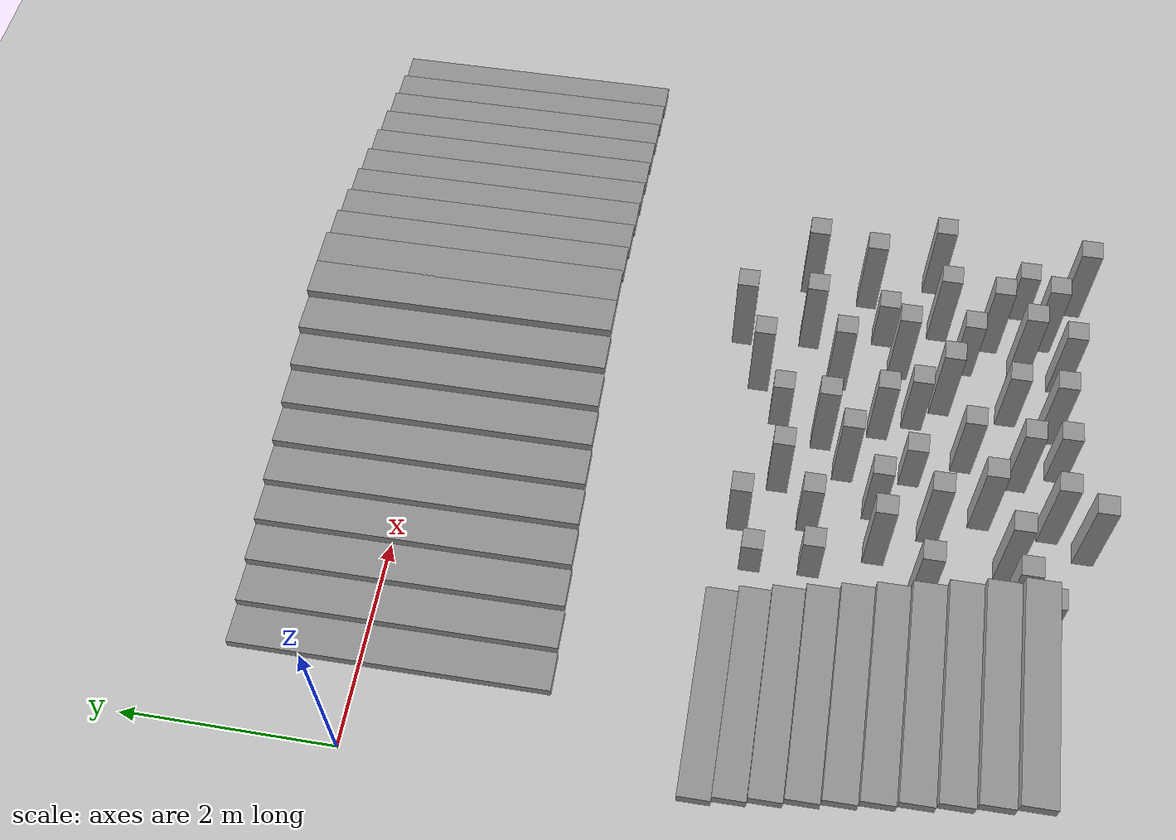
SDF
<sdf version="1.7">
 <world name="default">
  <model name="ground_plane">
   <static>1</static>
   <link name="link">
    <collision name="collision">
     <geometry><plane><normal>0 0 1</normal><size>100 100</size></plane></geometry>
     <surface><friction><ode><mu>200</mu><mu2>200</mu2></ode></friction></surface>
    </collision>
    <visual name="visual">
     <cast_shadows>0</cast_shadows>
     <geometry><plane><normal>0 0 1</normal><size>100 100</size></plane></geometry>
     <material>
      <script><uri>file://media/materials/scripts/gazebo.material</uri><name>Gazebo/Grey</name></script>
     </material>
    </visual>
   </link>
  </model>
  <model name="stair_1">
   <pose>1.76459 -0.264334 0 0 -0 0</pose>
   <link name="Stairs_2">
    <visual name="Stairs_2_Visual_0">
     <pose>-0.81 0 0.05 0 -0 1.5708</pose>
     <geometry><box><size>3 0.37 0.1</size></box></geometry>
     <material>
      <script><uri>file://media/materials/scripts/gazebo.material</uri><name>Gazebo/Grey</name></script>
      <ambient>1 1 1 1</ambient>
     </material>
     <meta><layer>0</layer></meta>
    </visual>
    <collision name="Stairs_2_Collision_0">
     <geometry><box><size>3 0.37 0.1</size></box></geometry>
     <pose>-0.81 0 0.05 0 -0 1.5708</pose>
     <surface><friction><ode><mu>200</mu><mu2>200</mu2></ode></friction></surface>
    </collision>
    <visual name="Stairs_2_Visual_1">
     <pose>-0.44 0 0.15 0 -0 1.5708</pose>
     <geometry><box><size>3 0.37 0.1</size></box></geometry>
     <material>
      <script><uri>file://media/materials/scripts/gazebo.material</uri><name>Gazebo/Grey</name></script>
      <ambient>1 1 1 1</ambient>
     </material>
     <meta><layer>0</layer></meta>
    </visual>
    <collision name="Stairs_2_Collision_1">
     <geometry><box><size>3 0.37 0.1</size></box></geometry>
     <pose>-0.44 0 0.15 0 -0 1.5708</pose>
     <surface><friction><ode><mu>200</mu><mu2>200</mu2></ode></friction></surface>
    </collision>
    <visual name="Stairs_2_Visual_2">
     <pose>-0.07 0 0.25 0 -0 1.5708</pose>
     <geometry><box><size>3 0.37 0.1</size></box></geometry>
     <material>
      <script><uri>file://media/materials/scripts/gazebo.material</uri><name>Gazebo/Grey</name></script>
      <ambient>1 1 1 1</ambient>
     </material>
     <meta><layer>0</layer></meta>
    </visual>
    <collision name="Stairs_2_Collision_2">
     <geometry><box><size>3 0.37 0.1</size></box></geometry>
     <pose>-0.07 0 0.25 0 -0 1.5708</pose>
     <surface><friction><ode><mu>200</mu><mu2>200</mu2></ode></friction></surface>
    </collision>
    <visual name="Stairs_2_Visual_3">
     <pose>0.3 0 0.35 0 -0 1.5708</pose>
     <geometry><box><size>3 0.37 0.1</size></box></geometry>
     <material>
      <script><uri>file://media/materials/scripts/gazebo.material</uri><name>Gazebo/Grey</name></script>
      <ambient>1 1 1 1</ambient>
     </material>
     <meta><layer>0</layer></meta>
    </visual>
    <collision name="Stairs_2_Collision_3">
     <geometry><box><size>3 0.37 0.1</size></box></geometry>
     <pose>0.3 0 0.35 0 -0 1.5708</pose>
     <surface><friction><ode><mu>200</mu><mu2>200</mu2></ode></friction></surface>
    </collision>
    <visual name="Stairs_2_Visual_4">
     <pose>0.67 0 0.45 0 -0 1.5708</pose>
     <geometry><box><size>3 0.37 0.1</size></box></geometry>
     <material>
      <script><uri>file://media/materials/scripts/gazebo.material</uri><name>Gazebo/Grey</name></script>
      <ambient>1 1 1 1</ambient>
     </material>
     <meta><layer>0</layer></meta>
    </visual>
    <collision name="Stairs_2_Collision_4">
     <geometry><box><size>3 0.37 0.1</size></box></geometry>
     <pose>0.67 0 0.45 0 -0 1.5708</pose>
     <surface><friction><ode><mu>200</mu><mu2>200</mu2></ode></friction></surface>
    </collision>
    <visual name="Stairs_2_Visual_5">
     <pose>1.04 0 0.55 0 -0 1.5708</pose>
     <geometry><box><size>3 0.37 0.1</size></box></geometry>
     <material>
      <script><uri>file://media/materials/scripts/gazebo.material</uri><name>Gazebo/Grey</name></script>
      <ambient>1 1 1 1</ambient>
     </material>
     <meta><layer>0</layer></meta>
    </visual>
    <collision name="Stairs_2_Collision_5">
     <geometry><box><size>3 0.37 0.1</size></box></geometry>
     <pose>1.04 0 0.55 0 -0 1.5708</pose>
     <surface><friction><ode><mu>200</mu><mu2>200</mu2></ode></friction></surface>
    </collision>
    <visual name="Stairs_2_Visual_6">
     <pose>1.41 0 0.65 0 -0 1.5708</pose>
     <geometry><box><size>3 0.37 0.1</size></box></geometry>
     <material>
      <script><uri>file://media/materials/scripts/gazebo.material</uri><name>Gazebo/Grey</name></script>
      <ambient>1 1 1 1</ambient>
     </material>
     <meta><layer>0</layer></meta>
    </visual>
    <collision name="Stairs_2_Collision_6">
     <geometry><box><size>3 0.37 0.1</size></box></geometry>
     <pose>1.41 0 0.65 0 -0 1.5708</pose>
     <surface><friction><ode><mu>200</mu><mu2>200</mu2></ode></friction></surface>
    </collision>
    <visual name="Stairs_2_Visual_7">
     <pose>1.78 0 0.75 0 -0 1.5708</pose>
     <geometry><box><size>3 0.37 0.1</size></box></geometry>
     <material>
      <script><uri>file://media/materials/scripts/gazebo.material</uri><name>Gazebo/Grey</name></script>
      <ambient>1 1 1 1</ambient>
     </material>
     <meta><layer>0</layer></meta>
    </visual>
    <collision name="Stairs_2_Collision_7">
     <geometry><box><size>3 0.37 0.1</size></box></geometry>
     <pose>1.78 0 0.75 0 -0 1.5708</pose>
     <surface><friction><ode><mu>200</mu><mu2>200</mu2></ode></friction></surface>
    </collision>
    <visual name="Stairs_2_Visual_8">
     <pose>2.15 0 0.85 0 -0 1.5708</pose>
     <geometry><box><size>3 0.37 0.1</size></box></geometry>
     <material>
      <script><uri>file://media/materials/scripts/gazebo.material</uri><name>Gazebo/Grey</name></script>
      <ambient>1 1 1 1</ambient>
     </material>
     <meta><layer>0</layer></meta>
    </visual>
    <collision name="Stairs_2_Collision_8">
     <geometry><box><size>3 0.37 0.1</size></box></geometry>
     <pose>2.15 0 0.85 0 -0 1.5708</pose>
     <surface><friction><ode><mu>200</mu><mu2>200</mu2></ode></friction></surface>
    </collision>
    <visual name="Stairs_2_Visual_9">
     <pose>2.52 0 0.95 0 -0 1.5708</pose>
     <geometry><box><size>3 0.37 0.1</size></box></geometry>
     <material>
      <script><uri>file://media/materials/scripts/gazebo.material</uri><name>Gazebo/Grey</name></script>
      <ambient>1 1 1 1</ambient>
     </material>
     <meta><layer>0</layer></meta>
    </visual>
    <collision name="Stairs_2_Collision_9">
     <geometry><box><size>3 0.37 0.1</size></box></geometry>
     <pose>2.52 0 0.95 0 -0 1.5708</pose>
     <surface><friction><ode><mu>200</mu><mu2>200</mu2></ode></friction></surface>
    </collision>
   </link>
   <static>1</static>
  </model>
  <model name="stair-0.12x0.3">
   <pose>1 -4.5 0 0 -0 0</pose>
   <link name="Stairs_2">
    <visual name="Stairs_2_Visual_0">
     <pose>0 1.35 0.06 0 -0 0</pose>
     <geometry><box><size>2 0.3 0.12</size></box></geometry>
     <material>
      <script><uri>file://media/materials/scripts/gazebo.material</uri><name>Gazebo/Grey</name></script>
      <ambient>1 1 1 1</ambient>
     </material>
     <meta><layer>0</layer></meta>
    </visual>
    <collision name="Stairs_2_Collision_0">
     <geometry><box><size>2 0.3 0.12</size></box></geometry>
     <pose>0 1.35 0.06 0 -0 0</pose>
     <surface><friction><ode><mu>200</mu><mu2>200</mu2></ode></friction></surface>
    </collision>
    <visual name="Stairs_2_Visual_1">
     <pose>0 1.05 0.18 0 -0 0</pose>
     <geometry><box><size>2 0.3 0.12</size></box></geometry>
     <material>
      <script><uri>file://media/materials/scripts/gazebo.material</uri><name>Gazebo/Grey</name></script>
      <ambient>1 1 1 1</ambient>
     </material>
     <meta><layer>0</layer></meta>
    </visual>
    <collision name="Stairs_2_Collision_1">
     <geometry><box><size>2 0.3 0.12</size></box></geometry>
     <pose>0 1.05 0.18 0 -0 0</pose>
    </collision>
    <visual name="Stairs_2_Visual_2">
     <pose>0 0.75 0.3 0 -0 0</pose>
     <geometry><box><size>2 0.3 0.12</size></box></geometry>
     <material>
      <script><uri>file://media/materials/scripts/gazebo.material</uri><name>Gazebo/Grey</name></script>
      <ambient>1 1 1 1</ambient>
     </material>
     <meta><layer>0</layer></meta>
    </visual>
    <collision name="Stairs_2_Collision_2">
     <geometry><box><size>2 0.3 0.12</size></box></geometry>
     <pose>0 0.75 0.3 0 -0 0</pose>
    </collision>
    <visual name="Stairs_2_Visual_3">
     <pose>0 0.45 0.42 0 -0 0</pose>
     <geometry><box><size>2 0.3 0.12</size></box></geometry>
     <material>
      <script><uri>file://media/materials/scripts/gazebo.material</uri><name>Gazebo/Grey</name></script>
      <ambient>1 1 1 1</ambient>
     </material>
     <meta><layer>0</layer></meta>
    </visual>
    <collision name="Stairs_2_Collision_3">
     <geometry><box><size>2 0.3 0.12</size></box></geometry>
     <pose>0 0.45 0.42 0 -0 0</pose>
    </collision>
    <visual name="Stairs_2_Visual_4">
     <pose>0 0.15 0.54 0 -0 0</pose>
     <geometry><box><size>2 0.3 0.12</size></box></geometry>
     <material>
      <script><uri>file://media/materials/scripts/gazebo.material</uri><name>Gazebo/Grey</name></script>
      <ambient>1 1 1 1</ambient>
     </material>
     <meta><layer>0</layer></meta>
    </visual>
    <collision name="Stairs_2_Collision_4">
     <geometry><box><size>2 0.3 0.12</size></box></geometry>
     <pose>0 0.15 0.54 0 -0 0</pose>
    </collision>
    <visual name="Stairs_2_Visual_5">
     <pose>0 -0.15 0.66 0 -0 0</pose>
     <geometry><box><size>2 0.3 0.12</size></box></geometry>
     <material>
      <script><uri>file://media/materials/scripts/gazebo.material</uri><name>Gazebo/Grey</name></script>
      <ambient>1 1 1 1</ambient>
     </material>
     <meta><layer>0</layer></meta>
    </visual>
    <collision name="Stairs_2_Collision_5">
     <geometry><box><size>2 0.3 0.12</size></box></geometry>
     <pose>0 -0.15 0.66 0 -0 0</pose>
    </collision>
    <visual name="Stairs_2_Visual_6">
     <pose>0 -0.45 0.78 0 -0 0</pose>
     <geometry><box><size>2 0.3 0.12</size></box></geometry>
     <material>
      <script><uri>file://media/materials/scripts/gazebo.material</uri><name>Gazebo/Grey</name></script>
      <ambient>1 1 1 1</ambient>
     </material>
     <meta><layer>0</layer></meta>
    </visual>
    <collision name="Stairs_2_Collision_6">
     <geometry><box><size>2 0.3 0.12</size></box></geometry>
     <pose>0 -0.45 0.78 0 -0 0</pose>
    </collision>
    <visual name="Stairs_2_Visual_7">
     <pose>0 -0.75 0.9 0 -0 0</pose>
     <geometry><box><size>2 0.3 0.12</size></box></geometry>
     <material>
      <script><uri>file://media/materials/scripts/gazebo.material</uri><name>Gazebo/Grey</name></script>
      <ambient>1 1 1 1</ambient>
     </material>
     <meta><layer>0</layer></meta>
    </visual>
    <collision name="Stairs_2_Collision_7">
     <geometry><box><size>2 0.3 0.12</size></box></geometry>
     <pose>0 -0.75 0.9 0 -0 0</pose>
    </collision>
    <visual name="Stairs_2_Visual_8">
     <pose>0 -1.05 1.02 0 -0 0</pose>
     <geometry><box><size>2 0.3 0.12</size></box></geometry>
     <material>
      <script><uri>file://media/materials/scripts/gazebo.material</uri><name>Gazebo/Grey</name></script>
      <ambient>1 1 1 1</ambient>
     </material>
     <meta><layer>0</layer></meta>
    </visual>
    <collision name="Stairs_2_Collision_8">
     <geometry><box><size>2 0.3 0.12</size></box></geometry>
     <pose>0 -1.05 1.02 0 -0 0</pose>
    </collision>
    <visual name="Stairs_2_Visual_9">
     <pose>0 -1.35 1.14 0 -0 0</pose>
     <geometry><box><size>2 0.3 0.12</size></box></geometry>
     <material>
      <script><uri>file://media/materials/scripts/gazebo.material</uri><name>Gazebo/Grey</name></script>
      <ambient>1 1 1 1</ambient>
     </material>
     <meta><layer>0</layer></meta>
    </visual>
    <collision name="Stairs_2_Collision_9">
     <geometry><box><size>2 0.3 0.12</size></box></geometry>
     <pose>0 -1.35 1.14 0 -0 0</pose>
    </collision>
   </link>
   <static>1</static>
  </model>
  <model name="column_0.2_0.2_1">
   <pose>2.43998 -3.36854 -0.544818 0 -0 0</pose>
   <link name="Stairs_4">
    <visual name="Stairs_4_Visual_0">
     <pose>-0.053734 0 0.5 0 -0 0</pose>
     <geometry><box><size>0.2 0.2 1</size></box></geometry>
     <material>
      <script><uri>file://media/materials/scripts/gazebo.material</uri><name>Gazebo/Grey</name></script>
      <ambient>1 1 1 1</ambient>
     </material>
     <meta><layer>0</layer></meta>
    </visual>
    <collision name="Stairs_4_Collision_0">
     <geometry><box><size>0.2 0.2 1</size></box></geometry>
     <pose>-0.053734 0 0.5 0 -0 0</pose>
    </collision>
   </link>
   <static>1</static>
  </model>
  <model name="column_0.2_0.2_1_clone">
   <pose>2.47019 -3.92126 -0.388919 0 -0 0</pose>
   <link name="Stairs_4">
    <visual name="Stairs_4_Visual_0">
     <pose>-0.053734 0 0.5 0 -0 0</pose>
     <geometry><box><size>0.2 0.2 1</size></box></geometry>
     <material>
      <script><uri>file://media/materials/scripts/gazebo.material</uri><name>Gazebo/Grey</name></script>
      <ambient>1 1 1 1</ambient>
     </material>
     <meta><layer>0</layer></meta>
    </visual>
    <collision name="Stairs_4_Collision_0">
     <geometry><box><size>0.2 0.2 1</size></box></geometry>
     <pose>-0.053734 0 0.5 0 -0 0</pose>
    </collision>
   </link>
   <static>1</static>
  </model>
  <model name="column_0.2_0.2_1_clone_0">
   <pose>2.94265 -3.86072 -0.240367 0 -0 0</pose>
   <link name="Stairs_4">
    <visual name="Stairs_4_Visual_0">
     <pose>-0.053734 0 0.5 0 -0 0</pose>
     <geometry><box><size>0.2 0.2 1</size></box></geometry>
     <material>
      <script><uri>file://media/materials/scripts/gazebo.material</uri><name>Gazebo/Grey</name></script>
      <ambient>1 1 1 1</ambient>
     </material>
     <meta><layer>0</layer></meta>
    </visual>
    <collision name="Stairs_4_Collision_0">
     <geometry><box><size>0.2 0.2 1</size></box></geometry>
     <pose>-0.053734 0 0.5 0 -0 0</pose>
    </collision>
   </link>
   <static>1</static>
  </model>
  <model name="column_0.2_0.2_1_clone_1">
   <pose>3.33077 -3.53594 -0.12401 0 -0 0</pose>
   <link name="Stairs_4">
    <visual name="Stairs_4_Visual_0">
     <pose>-0.053734 0 0.5 0 -0 0</pose>
     <geometry><box><size>0.2 0.2 1</size></box></geometry>
     <material>
      <script><uri>file://media/materials/scripts/gazebo.material</uri><name>Gazebo/Grey</name></script>
      <ambient>1 1 1 1</ambient>
     </material>
     <meta><layer>0</layer></meta>
    </visual>
    <collision name="Stairs_4_Collision_0">
     <geometry><box><size>0.2 0.2 1</size></box></geometry>
     <pose>-0.053734 0 0.5 0 -0 0</pose>
    </collision>
   </link>
   <static>1</static>
  </model>
  <model name="column_0.2_0.2_1_clone_2">
   <pose>4.08626 -3.47523 -0.328391 0 -0 0</pose>
   <link name="Stairs_4">
    <visual name="Stairs_4_Visual_0">
     <pose>-0.053734 0 0.5 0 -0 0</pose>
     <geometry><box><size>0.2 0.2 1</size></box></geometry>
     <material>
      <script><uri>file://media/materials/scripts/gazebo.material</uri><name>Gazebo/Grey</name></script>
      <ambient>1 1 1 1</ambient>
     </material>
     <meta><layer>0</layer></meta>
    </visual>
    <collision name="Stairs_4_Collision_0">
     <geometry><box><size>0.2 0.2 1</size></box></geometry>
     <pose>-0.053734 0 0.5 0 -0 0</pose>
    </collision>
   </link>
   <static>1</static>
  </model>
  <model name="column_0.2_0.2_1_clone_3">
   <pose>3.54211 -4.14939 0 0 -0 0</pose>
   <link name="Stairs_4">
    <visual name="Stairs_4_Visual_0">
     <pose>-0.053734 0 0.5 0 -0 0</pose>
     <geometry><box><size>0.2 0.2 1</size></box></geometry>
     <material>
      <script><uri>file://media/materials/scripts/gazebo.material</uri><name>Gazebo/Grey</name></script>
      <ambient>1 1 1 1</ambient>
     </material>
     <meta><layer>0</layer></meta>
    </visual>
    <collision name="Stairs_4_Collision_0">
     <geometry><box><size>0.2 0.2 1</size></box></geometry>
     <pose>-0.053734 0 0.5 0 -0 0</pose>
    </collision>
   </link>
   <static>1</static>
  </model>
  <model name="column_0.2_0.2_1_clone_4">
   <pose>2.69067 -4.50877 0 0 -0 0</pose>
   <link name="Stairs_4">
    <visual name="Stairs_4_Visual_0">
     <pose>-0.053734 0 0.5 0 -0 0</pose>
     <geometry><box><size>0.2 0.2 1</size></box></geometry>
     <material>
      <script><uri>file://media/materials/scripts/gazebo.material</uri><name>Gazebo/Grey</name></script>
      <ambient>1 1 1 1</ambient>
     </material>
     <meta><layer>0</layer></meta>
    </visual>
    <collision name="Stairs_4_Collision_0">
     <geometry><box><size>0.2 0.2 1</size></box></geometry>
     <pose>-0.053734 0 0.5 0 -0 0</pose>
    </collision>
   </link>
   <static>1</static>
  </model>
  <model name="column_0.2_0.2_1_clone_5">
   <pose>3.16441 -4.46969 -0.12695 0 -0 0</pose>
   <link name="Stairs_4">
    <visual name="Stairs_4_Visual_0">
     <pose>-0.053734 0 0.5 0 -0 0</pose>
     <geometry><box><size>0.2 0.2 1</size></box></geometry>
     <material>
      <script><uri>file://media/materials/scripts/gazebo.material</uri><name>Gazebo/Grey</name></script>
      <ambient>1 1 1 1</ambient>
     </material>
     <meta><layer>0</layer></meta>
    </visual>
    <collision name="Stairs_4_Collision_0">
     <geometry><box><size>0.2 0.2 1</size></box></geometry>
     <pose>-0.053734 0 0.5 0 -0 0</pose>
    </collision>
   </link>
   <static>1</static>
  </model>
  <model name="column_0.2_0.2_1_clone_6">
   <pose>2.29582 -4.9482 0 0 -0 0</pose>
   <link name="Stairs_4">
    <visual name="Stairs_4_Visual_0">
     <pose>-0.053734 0 0.5 0 -0 0</pose>
     <geometry><box><size>0.2 0.2 1</size></box></geometry>
     <material>
      <script><uri>file://media/materials/scripts/gazebo.material</uri><name>Gazebo/Grey</name></script>
      <ambient>1 1 1 1</ambient>
     </material>
     <meta><layer>0</layer></meta>
    </visual>
    <collision name="Stairs_4_Collision_0">
     <geometry><box><size>0.2 0.2 1</size></box></geometry>
     <pose>-0.053734 0 0.5 0 -0 0</pose>
    </collision>
   </link>
   <static>1</static>
  </model>
  <model name="column_0.2_0.2_1_clone_7">
   <pose>3 -5 0 0 -0 0</pose>
   <link name="Stairs_4">
    <visual name="Stairs_4_Visual_0">
     <pose>-0.053734 0 0.5 0 -0 0</pose>
     <geometry><box><size>0.2 0.2 1</size></box></geometry>
     <material>
      <script><uri>file://media/materials/scripts/gazebo.material</uri><name>Gazebo/Grey</name></script>
      <ambient>1 1 1 1</ambient>
     </material>
     <meta><layer>0</layer></meta>
    </visual>
    <collision name="Stairs_4_Collision_0">
     <geometry><box><size>0.2 0.2 1</size></box></geometry>
     <pose>-0.053734 0 0.5 0 -0 0</pose>
    </collision>
   </link>
   <static>1</static>
  </model>
  <model name="column_0.2_0.2_1_clone_8">
   <pose>3.59843 -4.79127 -0.351116 0 -0 0</pose>
   <link name="Stairs_4">
    <visual name="Stairs_4_Visual_0">
     <pose>-0.053734 0 0.5 0 -0 0</pose>
     <geometry><box><size>0.2 0.2 1</size></box></geometry>
     <material>
      <script><uri>file://media/materials/scripts/gazebo.material</uri><name>Gazebo/Grey</name></script>
      <ambient>1 1 1 1</ambient>
     </material>
     <meta><layer>0</layer></meta>
    </visual>
    <collision name="Stairs_4_Collision_0">
     <geometry><box><size>0.2 0.2 1</size></box></geometry>
     <pose>-0.053734 0 0.5 0 -0 0</pose>
    </collision>
   </link>
   <static>1</static>
  </model>
  <model name="column_0.2_0.2_1_clone_9">
   <pose>4.08606 -4.45122 -0.09133 0 -0 0</pose>
   <link name="Stairs_4">
    <visual name="Stairs_4_Visual_0">
     <pose>-0.053734 0 0.5 0 -0 0</pose>
     <geometry><box><size>0.2 0.2 1</size></box></geometry>
     <material>
      <script><uri>file://media/materials/scripts/gazebo.material</uri><name>Gazebo/Grey</name></script>
      <ambient>1 1 1 1</ambient>
     </material>
     <meta><layer>0</layer></meta>
    </visual>
    <collision name="Stairs_4_Collision_0">
     <geometry><box><size>0.2 0.2 1</size></box></geometry>
     <pose>-0.053734 0 0.5 0 -0 0</pose>
    </collision>
   </link>
   <static>1</static>
  </model>
  <model name="column_0.2_0.2_1_clone_10">
   <pose>4.59372 -4 0 0 -0 0</pose>
   <link name="Stairs_4">
    <visual name="Stairs_4_Visual_0">
     <pose>-0.053734 0 0.5 0 -0 0</pose>
     <geometry><box><size>0.2 0.2 1</size></box></geometry>
     <material>
      <script><uri>file://media/materials/scripts/gazebo.material</uri><name>Gazebo/Grey</name></script>
      <ambient>1 1 1 1</ambient>
     </material>
     <meta><layer>0</layer></meta>
    </visual>
    <collision name="Stairs_4_Collision_0">
     <geometry><box><size>0.2 0.2 1</size></box></geometry>
     <pose>-0.053734 0 0.5 0 -0 0</pose>
    </collision>
   </link>
   <static>1</static>
  </model>
  <model name="column_0.2_0.2_1_clone_11">
   <pose>5 -3 0 0 -0 0</pose>
   <link name="Stairs_4">
    <visual name="Stairs_4_Visual_0">
     <pose>-0.053734 0 0.5 0 -0 0</pose>
     <geometry><box><size>0.2 0.2 1</size></box></geometry>
     <material>
      <script><uri>file://media/materials/scripts/gazebo.material</uri><name>Gazebo/Grey</name></script>
      <ambient>1 1 1 1</ambient>
     </material>
     <meta><layer>0</layer></meta>
    </visual>
    <collision name="Stairs_4_Collision_0">
     <geometry><box><size>0.2 0.2 1</size></box></geometry>
     <pose>-0.053734 0 0.5 0 -0 0</pose>
    </collision>
   </link>
   <static>1</static>
  </model>
  <model name="column_0.2_0.2_1_clone_12">
   <pose>5.05859 -3.68262 0 0 -0 0</pose>
   <link name="Stairs_4">
    <visual name="Stairs_4_Visual_0">
     <pose>-0.053734 0 0.5 0 -0 0</pose>
     <geometry><box><size>0.2 0.2 1</size></box></geometry>
     <material>
      <script><uri>file://media/materials/scripts/gazebo.material</uri><name>Gazebo/Grey</name></script>
      <ambient>1 1 1 1</ambient>
     </material>
     <meta><layer>0</layer></meta>
    </visual>
    <collision name="Stairs_4_Collision_0">
     <geometry><box><size>0.2 0.2 1</size></box></geometry>
     <pose>-0.053734 0 0.5 0 -0 0</pose>
    </collision>
   </link>
   <static>1</static>
  </model>
  <model name="column_0.2_0.2_1_clone_13">
   <pose>4.4566 -5.04009 0 0 -0 0</pose>
   <link name="Stairs_4">
    <visual name="Stairs_4_Visual_0">
     <pose>-0.053734 0 0.5 0 -0 0</pose>
     <geometry><box><size>0.2 0.2 1</size></box></geometry>
     <material>
      <script><uri>file://media/materials/scripts/gazebo.material</uri><name>Gazebo/Grey</name></script>
      <ambient>1 1 1 1</ambient>
     </material>
     <meta><layer>0</layer></meta>
    </visual>
    <collision name="Stairs_4_Collision_0">
     <geometry><box><size>0.2 0.2 1</size></box></geometry>
     <pose>-0.053734 0 0.5 0 -0 0</pose>
    </collision>
   </link>
   <static>1</static>
  </model>
  <model name="column_0.2_0.2_1_clone_14">
   <pose>4.82505 -4.5982 -0.003503 0 -0 0</pose>
   <link name="Stairs_4">
    <visual name="Stairs_4_Visual_0">
     <pose>-0.053734 0 0.5 0 -0 0</pose>
     <geometry><box><size>0.2 0.2 1</size></box></geometry>
     <material>
      <script><uri>file://media/materials/scripts/gazebo.material</uri><name>Gazebo/Grey</name></script>
      <ambient>1 1 1 1</ambient>
     </material>
     <meta><layer>0</layer></meta>
    </visual>
    <collision name="Stairs_4_Collision_0">
     <geometry><box><size>0.2 0.2 1</size></box></geometry>
     <pose>-0.053734 0 0.5 0 -0 0</pose>
    </collision>
   </link>
   <static>1</static>
  </model>
  <model name="column_0.2_0.2_1_clone_15">
   <pose>5.20804 -4.41852 -0.329639 0 -0 0</pose>
   <link name="Stairs_4">
    <visual name="Stairs_4_Visual_0">
     <pose>-0.053734 0 0.5 0 -0 0</pose>
     <geometry><box><size>0.2 0.2 1</size></box></geometry>
     <material>
      <script><uri>file://media/materials/scripts/gazebo.material</uri><name>Gazebo/Grey</name></script>
      <ambient>1 1 1 1</ambient>
     </material>
     <meta><layer>0</layer></meta>
    </visual>
    <collision name="Stairs_4_Collision_0">
     <geometry><box><size>0.2 0.2 1</size></box></geometry>
     <pose>-0.053734 0 0.5 0 -0 0</pose>
    </collision>
   </link>
   <static>1</static>
  </model>
  <model name="column_0.2_0.2_1_clone_16">
   <pose>3.82963 -5.28222 -0.112357 0 -0 0</pose>
   <link name="Stairs_4">
    <visual name="Stairs_4_Visual_0">
     <pose>-0.053734 0 0.5 0 -0 0</pose>
     <geometry><box><size>0.2 0.2 1</size></box></geometry>
     <material>
      <script><uri>file://media/materials/scripts/gazebo.material</uri><name>Gazebo/Grey</name></script>
      <ambient>1 1 1 1</ambient>
     </material>
     <meta><layer>0</layer></meta>
    </visual>
    <collision name="Stairs_4_Collision_0">
     <geometry><box><size>0.2 0.2 1</size></box></geometry>
     <pose>-0.053734 0 0.5 0 -0 0</pose>
    </collision>
   </link>
   <static>1</static>
  </model>
  <model name="column_0.2_0.2_1_clone_17">
   <pose>3.16779 -5.46012 0.095015 0 -0 0</pose>
   <link name="Stairs_4">
    <visual name="Stairs_4_Visual_0">
     <pose>-0.053734 0 0.5 0 -0 0</pose>
     <geometry><box><size>0.2 0.2 1</size></box></geometry>
     <material>
      <script><uri>file://media/materials/scripts/gazebo.material</uri><name>Gazebo/Grey</name></script>
      <ambient>1 1 1 1</ambient>
     </material>
     <meta><layer>0</layer></meta>
    </visual>
    <collision name="Stairs_4_Collision_0">
     <geometry><box><size>0.2 0.2 1</size></box></geometry>
     <pose>-0.053734 0 0.5 0 -0 0</pose>
    </collision>
   </link>
   <static>1</static>
  </model>
  <model name="column_0.2_0.2_1_clone_18">
   <pose>3.69432 -5.80994 0 0 -0 0</pose>
   <link name="Stairs_4">
    <visual name="Stairs_4_Visual_0">
     <pose>-0.053734 0 0.5 0 -0 0</pose>
     <geometry><box><size>0.2 0.2 1</size></box></geometry>
     <material>
      <script><uri>file://media/materials/scripts/gazebo.material</uri><name>Gazebo/Grey</name></script>
      <ambient>1 1 1 1</ambient>
     </material>
     <meta><layer>0</layer></meta>
    </visual>
    <collision name="Stairs_4_Collision_0">
     <geometry><box><size>0.2 0.2 1</size></box></geometry>
     <pose>-0.053734 0 0.5 0 -0 0</pose>
    </collision>
   </link>
   <static>1</static>
  </model>
  <model name="column_0.2_0.2_1_clone_19">
   <pose>2.71 -5.73046 0 0 -0 0</pose>
   <link name="Stairs_4">
    <visual name="Stairs_4_Visual_0">
     <pose>-0.053734 0 0.5 0 -0 0</pose>
     <geometry><box><size>0.2 0.2 1</size></box></geometry>
     <material>
      <script><uri>file://media/materials/scripts/gazebo.material</uri><name>Gazebo/Grey</name></script>
      <ambient>1 1 1 1</ambient>
     </material>
     <meta><layer>0</layer></meta>
    </visual>
    <collision name="Stairs_4_Collision_0">
     <geometry><box><size>0.2 0.2 1</size></box></geometry>
     <pose>-0.053734 0 0.5 0 -0 0</pose>
    </collision>
   </link>
   <static>1</static>
  </model>
  <model name="column_0.2_0.2_1_clone_20">
   <pose>3.17913 -6.12706 0 0 -0 0</pose>
   <link name="Stairs_4">
    <visual name="Stairs_4_Visual_0">
     <pose>-0.053734 0 0.5 0 -0 0</pose>
     <geometry><box><size>0.2 0.2 1</size></box></geometry>
     <material>
      <script><uri>file://media/materials/scripts/gazebo.material</uri><name>Gazebo/Grey</name></script>
      <ambient>1 1 1 1</ambient>
     </material>
     <meta><layer>0</layer></meta>
    </visual>
    <collision name="Stairs_4_Collision_0">
     <geometry><box><size>0.2 0.2 1</size></box></geometry>
     <pose>-0.053734 0 0.5 0 -0 0</pose>
    </collision>
   </link>
   <static>1</static>
  </model>
  <model name="column_0.2_0.2_1_clone_21">
   <pose>2.27793 -5.80084 0 0 -0 0</pose>
   <link name="Stairs_4">
    <visual name="Stairs_4_Visual_0">
     <pose>-0.053734 0 0.5 0 -0 0</pose>
     <geometry><box><size>0.2 0.2 1</size></box></geometry>
     <material>
      <script><uri>file://media/materials/scripts/gazebo.material</uri><name>Gazebo/Grey</name></script>
      <ambient>1 1 1 1</ambient>
     </material>
     <meta><layer>0</layer></meta>
    </visual>
    <collision name="Stairs_4_Collision_0">
     <geometry><box><size>0.2 0.2 1</size></box></geometry>
     <pose>-0.053734 0 0.5 0 -0 0</pose>
    </collision>
   </link>
   <static>1</static>
  </model>
  <model name="column_0.2_0.2_1_clone_22">
   <pose>2 -6 0 0 -0 0</pose>
   <link name="Stairs_4">
    <visual name="Stairs_4_Visual_0">
     <pose>-0.053734 0 0.5 0 -0 0</pose>
     <geometry><box><size>0.2 0.2 1</size></box></geometry>
     <material>
      <script><uri>file://media/materials/scripts/gazebo.material</uri><name>Gazebo/Grey</name></script>
      <ambient>1 1 1 1</ambient>
     </material>
     <meta><layer>0</layer></meta>
    </visual>
    <collision name="Stairs_4_Collision_0">
     <geometry><box><size>0.2 0.2 1</size></box></geometry>
     <pose>-0.053734 0 0.5 0 -0 0</pose>
    </collision>
   </link>
   <static>1</static>
  </model>
  <model name="column_0.2_0.2_1_clone_23">
   <pose>3 -6.45867 0 0 -0 0</pose>
   <link name="Stairs_4">
    <visual name="Stairs_4_Visual_0">
     <pose>-0.053734 0 0.5 0 -0 0</pose>
     <geometry><box><size>0.2 0.2 1</size></box></geometry>
     <material>
      <script><uri>file://media/materials/scripts/gazebo.material</uri><name>Gazebo/Grey</name></script>
      <ambient>1 1 1 1</ambient>
     </material>
     <meta><layer>0</layer></meta>
    </visual>
    <collision name="Stairs_4_Collision_0">
     <geometry><box><size>0.2 0.2 1</size></box></geometry>
     <pose>-0.053734 0 0.5 0 -0 0</pose>
    </collision>
   </link>
   <static>1</static>
  </model>
  <model name="column_0.2_0.2_1_clone_24">
   <pose>3.86716 -6.19414 -0.215449 0 -0 0</pose>
   <link name="Stairs_4">
    <visual name="Stairs_4_Visual_0">
     <pose>-0.053734 0 0.5 0 -0 0</pose>
     <geometry><box><size>0.2 0.2 1</size></box></geometry>
     <material>
      <script><uri>file://media/materials/scripts/gazebo.material</uri><name>Gazebo/Grey</name></script>
      <ambient>1 1 1 1</ambient>
     </material>
     <meta><layer>0</layer></meta>
    </visual>
    <collision name="Stairs_4_Collision_0">
     <geometry><box><size>0.2 0.2 1</size></box></geometry>
     <pose>-0.053734 0 0.5 0 -0 0</pose>
    </collision>
   </link>
   <static>1</static>
  </model>
  <model name="column_0.2_0.2_1_clone_25">
   <pose>4.43845 -5.6985 -0.179524 0 -0 0</pose>
   <link name="Stairs_4">
    <visual name="Stairs_4_Visual_0">
     <pose>-0.053734 0 0.5 0 -0 0</pose>
     <geometry><box><size>0.2 0.2 1</size></box></geometry>
     <material>
      <script><uri>file://media/materials/scripts/gazebo.material</uri><name>Gazebo/Grey</name></script>
      <ambient>1 1 1 1</ambient>
     </material>
     <meta><layer>0</layer></meta>
    </visual>
    <collision name="Stairs_4_Collision_0">
     <geometry><box><size>0.2 0.2 1</size></box></geometry>
     <pose>-0.053734 0 0.5 0 -0 0</pose>
    </collision>
   </link>
   <static>1</static>
  </model>
  <model name="column_0.2_0.2_1_clone_26">
   <pose>4.97935 -5.24704 -0.177882 0 -0 0</pose>
   <link name="Stairs_4">
    <visual name="Stairs_4_Visual_0">
     <pose>-0.053734 0 0.5 0 -0 0</pose>
     <geometry><box><size>0.2 0.2 1</size></box></geometry>
     <material>
      <script><uri>file://media/materials/scripts/gazebo.material</uri><name>Gazebo/Grey</name></script>
      <ambient>1 1 1 1</ambient>
     </material>
     <meta><layer>0</layer></meta>
    </visual>
    <collision name="Stairs_4_Collision_0">
     <geometry><box><size>0.2 0.2 1</size></box></geometry>
     <pose>-0.053734 0 0.5 0 -0 0</pose>
    </collision>
   </link>
   <static>1</static>
  </model>
  <model name="column_0.2_0.2_1_clone_27">
   <pose>4.88953 -5.76568 0.175563 0 -0 0</pose>
   <link name="Stairs_4">
    <visual name="Stairs_4_Visual_0">
     <pose>-0.053734 0 0.5 0 -0 0</pose>
     <geometry><box><size>0.2 0.2 1</size></box></geometry>
     <material>
      <script><uri>file://media/materials/scripts/gazebo.material</uri><name>Gazebo/Grey</name></script>
      <ambient>1 1 1 1</ambient>
     </material>
     <meta><layer>0</layer></meta>
    </visual>
    <collision name="Stairs_4_Collision_0">
     <geometry><box><size>0.2 0.2 1</size></box></geometry>
     <pose>-0.053734 0 0.5 0 -0 0</pose>
    </collision>
   </link>
   <static>1</static>
  </model>
  <model name="column_0.2_0.2_1_clone_28">
   <pose>4.28683 -6.10595 0 0 -0 0</pose>
   <link name="Stairs_4">
    <visual name="Stairs_4_Visual_0">
     <pose>-0.053734 0 0.5 0 -0 0</pose>
     <geometry><box><size>0.2 0.2 1</size></box></geometry>
     <material>
      <script><uri>file://media/materials/scripts/gazebo.material</uri><name>Gazebo/Grey</name></script>
      <ambient>1 1 1 1</ambient>
     </material>
     <meta><layer>0</layer></meta>
    </visual>
    <collision name="Stairs_4_Collision_0">
     <geometry><box><size>0.2 0.2 1</size></box></geometry>
     <pose>-0.053734 0 0.5 0 -0 0</pose>
    </collision>
   </link>
   <static>1</static>
  </model>
  <model name="column_0.2_0.2_1_clone_29">
   <pose>4.91038 -6.19891 -0.051085 0 -0 0</pose>
   <link name="Stairs_4">
    <visual name="Stairs_4_Visual_0">
     <pose>-0.053734 0 0.5 0 -0 0</pose>
     <geometry><box><size>0.2 0.2 1</size></box></geometry>
     <material>
      <script><uri>file://media/materials/scripts/gazebo.material</uri><name>Gazebo/Grey</name></script>
      <ambient>1 1 1 1</ambient>
     </material>
     <meta><layer>0</layer></meta>
    </visual>
    <collision name="Stairs_4_Collision_0">
     <geometry><box><size>0.2 0.2 1</size></box></geometry>
     <pose>-0.053734 0 0.5 0 -0 0</pose>
    </collision>
   </link>
   <static>1</static>
  </model>
  <model name="column_0.2_0.2_1_clone_30">
   <pose>5.75867 -3.64012 0 0 -0 0</pose>
   <link name="Stairs_4">
    <visual name="Stairs_4_Visual_0">
     <pose>-0.053734 0 0.5 0 -0 0</pose>
     <geometry><box><size>0.2 0.2 1</size></box></geometry>
     <material>
      <script><uri>file://media/materials/scripts/gazebo.material</uri><name>Gazebo/Grey</name></script>
      <ambient>1 1 1 1</ambient>
     </material>
     <meta><layer>0</layer></meta>
    </visual>
    <collision name="Stairs_4_Collision_0">
     <geometry><box><size>0.2 0.2 1</size></box></geometry>
     <pose>-0.053734 0 0.5 0 -0 0</pose>
    </collision>
   </link>
   <static>1</static>
  </model>
  <model name="column_0.2_0.2_1_clone_31">
   <pose>5.65941 -4.22714 0 0 -0 0</pose>
   <link name="Stairs_4">
    <visual name="Stairs_4_Visual_0">
     <pose>-0.053734 0 0.5 0 -0 0</pose>
     <geometry><box><size>0.2 0.2 1</size></box></geometry>
     <material>
      <script><uri>file://media/materials/scripts/gazebo.material</uri><name>Gazebo/Grey</name></script>
      <ambient>1 1 1 1</ambient>
     </material>
     <meta><layer>0</layer></meta>
    </visual>
    <collision name="Stairs_4_Collision_0">
     <geometry><box><size>0.2 0.2 1</size></box></geometry>
     <pose>-0.053734 0 0.5 0 -0 0</pose>
    </collision>
   </link>
   <static>1</static>
  </model>
  <model name="column_0.2_0.2_1_clone_32">
   <pose>5.3595 -4.97163 0 0 -0 0</pose>
   <link name="Stairs_4">
    <visual name="Stairs_4_Visual_0">
     <pose>-0.053734 0 0.5 0 -0 0</pose>
     <geometry><box><size>0.2 0.2 1</size></box></geometry>
     <material>
      <script><uri>file://media/materials/scripts/gazebo.material</uri><name>Gazebo/Grey</name></script>
      <ambient>1 1 1 1</ambient>
     </material>
     <meta><layer>0</layer></meta>
    </visual>
    <collision name="Stairs_4_Collision_0">
     <geometry><box><size>0.2 0.2 1</size></box></geometry>
     <pose>-0.053734 0 0.5 0 -0 0</pose>
    </collision>
   </link>
   <static>1</static>
  </model>
  <model name="column_0.2_0.2_1_clone_33">
   <pose>5.95492 -4.89372 0 0 -0 0</pose>
   <link name="Stairs_4">
    <visual name="Stairs_4_Visual_0">
     <pose>-0.053734 0 0.5 0 -0 0</pose>
     <geometry><box><size>0.2 0.2 1</size></box></geometry>
     <material>
      <script><uri>file://media/materials/scripts/gazebo.material</uri><name>Gazebo/Grey</name></script>
      <ambient>1 1 1 1</ambient>
     </material>
     <meta><layer>0</layer></meta>
    </visual>
    <collision name="Stairs_4_Collision_0">
     <geometry><box><size>0.2 0.2 1</size></box></geometry>
     <pose>-0.053734 0 0.5 0 -0 0</pose>
    </collision>
   </link>
   <static>1</static>
  </model>
  <model name="column_0.2_0.2_1_clone_34">
   <pose>5.29565 -5.4887 0 0 -0 0</pose>
   <link name="Stairs_4">
    <visual name="Stairs_4_Visual_0">
     <pose>-0.053734 0 0.5 0 -0 0</pose>
     <geometry><box><size>0.2 0.2 1</size></box></geometry>
     <material>
      <script><uri>file://media/materials/scripts/gazebo.material</uri><name>Gazebo/Grey</name></script>
      <ambient>1 1 1 1</ambient>
     </material>
     <meta><layer>0</layer></meta>
    </visual>
    <collision name="Stairs_4_Collision_0">
     <geometry><box><size>0.2 0.2 1</size></box></geometry>
     <pose>-0.053734 0 0.5 0 -0 0</pose>
    </collision>
   </link>
   <static>1</static>
  </model>
  <model name="column_0.2_0.2_1_clone_35">
   <pose>5.76715 -5.78945 -0.308182 0 -0 0</pose>
   <link name="Stairs_4">
    <visual name="Stairs_4_Visual_0">
     <pose>-0.053734 0 0.5 0 -0 0</pose>
     <geometry><box><size>0.2 0.2 1</size></box></geometry>
     <material>
      <script><uri>file://media/materials/scripts/gazebo.material</uri><name>Gazebo/Grey</name></script>
      <ambient>1 1 1 1</ambient>
     </material>
     <meta><layer>0</layer></meta>
    </visual>
    <collision name="Stairs_4_Collision_0">
     <geometry><box><size>0.2 0.2 1</size></box></geometry>
     <pose>-0.053734 0 0.5 0 -0 0</pose>
    </collision>
   </link>
   <static>1</static>
  </model>
  <model name="column_0.2_0.2_1_clone_36">
   <pose>5.39139 -6.02222 0 0 -0 0</pose>
   <link name="Stairs_4">
    <visual name="Stairs_4_Visual_0">
     <pose>-0.053734 0 0.5 0 -0 0</pose>
     <geometry><box><size>0.2 0.2 1</size></box></geometry>
     <material>
      <script><uri>file://media/materials/scripts/gazebo.material</uri><name>Gazebo/Grey</name></script>
      <ambient>1 1 1 1</ambient>
     </material>
     <meta><layer>0</layer></meta>
    </visual>
    <collision name="Stairs_4_Collision_0">
     <geometry><box><size>0.2 0.2 1</size></box></geometry>
     <pose>-0.053734 0 0.5 0 -0 0</pose>
    </collision>
   </link>
   <static>1</static>
  </model>
  <model name="column_0.2_0.2_1_clone_37">
   <pose>5.8902 -6.32358 0 0 -0 0</pose>
   <link name="Stairs_4">
    <visual name="Stairs_4_Visual_0">
     <pose>-0.053734 0 0.5 0 -0 0</pose>
     <geometry><box><size>0.2 0.2 1</size></box></geometry>
     <material>
      <script><uri>file://media/materials/scripts/gazebo.material</uri><name>Gazebo/Grey</name></script>
      <ambient>1 1 1 1</ambient>
     </material>
     <meta><layer>0</layer></meta>
    </visual>
    <collision name="Stairs_4_Collision_0">
     <geometry><box><size>0.2 0.2 1</size></box></geometry>
     <pose>-0.053734 0 0.5 0 -0 0</pose>
    </collision>
   </link>
   <static>1</static>
  </model>
  <model name="column_0.2_0.2_1_clone_38">
   <pose>3.86738 -3.90884 0 0 -0 0</pose>
   <link name="Stairs_4">
    <visual name="Stairs_4_Visual_0">
     <pose>-0.053734 0 0.5 0 -0 0</pose>
     <geometry><box><size>0.2 0.2 1</size></box></geometry>
     <material>
      <script><uri>file://media/materials/scripts/gazebo.material</uri><name>Gazebo/Grey</name></script>
      <ambient>1 1 1 1</ambient>
     </material>
     <meta><layer>0</layer></meta>
    </visual>
    <collision name="Stairs_4_Collision_0">
     <geometry><box><size>0.2 0.2 1</size></box></geometry>
     <pose>-0.053734 0 0.5 0 -0 0</pose>
    </collision>
   </link>
   <static>1</static>
  </model>
  <model name="column_0.2_0.2_1_clone_39">
   <pose>2.85263 -3.20499 -0.250715 0 -0 0</pose>
   <link name="Stairs_4">
    <visual name="Stairs_4_Visual_0">
     <pose>-0.053734 0 0.5 0 -0 0</pose>
     <geometry><box><size>0.2 0.2 1</size></box></geometry>
     <material>
      <script><uri>file://media/materials/scripts/gazebo.material</uri><name>Gazebo/Grey</name></script>
      <ambient>1 1 1 1</ambient>
     </material>
     <meta><layer>0</layer></meta>
    </visual>
    <collision name="Stairs_4_Collision_0">
     <geometry><box><size>0.2 0.2 1</size></box></geometry>
     <pose>-0.053734 0 0.5 0 -0 0</pose>
    </collision>
   </link>
   <static>1</static>
  </model>
  <model name="column_0.2_0.2_1_clone_40">
   <pose>4.46196 -3.22752 0 0 -0 0</pose>
   <link name="Stairs_4">
    <visual name="Stairs_4_Visual_0">
     <pose>-0.053734 0 0.5 0 -0 0</pose>
     <geometry><box><size>0.2 0.2 1</size></box></geometry>
     <material>
      <script><uri>file://media/materials/scripts/gazebo.material</uri><name>Gazebo/Grey</name></script>
      <ambient>1 1 1 1</ambient>
     </material>
     <meta><layer>0</layer></meta>
    </visual>
    <collision name="Stairs_4_Collision_0">
     <geometry><box><size>0.2 0.2 1</size></box></geometry>
     <pose>-0.053734 0 0.5 0 -0 0</pose>
    </collision>
   </link>
   <static>1</static>
  </model>
  <model name="column_0.2_0.2_1_clone_41">
   <pose>4.2488 -4.77873 -0.167013 0 -0 0</pose>
   <link name="Stairs_4">
    <visual name="Stairs_4_Visual_0">
     <pose>-0.053734 0 0.5 0 -0 0</pose>
     <geometry><box><size>0.2 0.2 1</size></box></geometry>
     <material>
      <script><uri>file://media/materials/scripts/gazebo.material</uri><name>Gazebo/Grey</name></script>
      <ambient>1 1 1 1</ambient>
     </material>
     <meta><layer>0</layer></meta>
    </visual>
    <collision name="Stairs_4_Collision_0">
     <geometry><box><size>0.2 0.2 1</size></box></geometry>
     <pose>-0.053734 0 0.5 0 -0 0</pose>
    </collision>
   </link>
   <static>1</static>
  </model>
  <model name="stair_1_clone">
   <pose>7.16782 -0.263572 0 0 0 -3.14124</pose>
   <link name="Stairs_2">
    <visual name="Stairs_2_Visual_0">
     <pose>-0.81 0 0.05 0 -0 1.5708</pose>
     <geometry><box><size>3 0.37 0.1</size></box></geometry>
     <material>
      <script><uri>file://media/materials/scripts/gazebo.material</uri><name>Gazebo/Grey</name></script>
      <ambient>1 1 1 1</ambient>
     </material>
     <meta><layer>0</layer></meta>
    </visual>
    <collision name="Stairs_2_Collision_0">
     <geometry><box><size>3 0.37 0.1</size></box></geometry>
     <pose>-0.81 0 0.05 0 -0 1.5708</pose>
     <surface><friction><ode><mu>200</mu><mu2>200</mu2></ode></friction></surface>
    </collision>
    <visual name="Stairs_2_Visual_1">
     <pose>-0.44 0 0.15 0 -0 1.5708</pose>
     <geometry><box><size>3 0.37 0.1</size></box></geometry>
     <material>
      <script><uri>file://media/materials/scripts/gazebo.material</uri><name>Gazebo/Grey</name></script>
      <ambient>1 1 1 1</ambient>
     </material>
     <meta><layer>0</layer></meta>
    </visual>
    <collision name="Stairs_2_Collision_1">
     <geometry><box><size>3 0.37 0.1</size></box></geometry>
     <pose>-0.44 0 0.15 0 -0 1.5708</pose>
     <surface><friction><ode><mu>200</mu><mu2>200</mu2></ode></friction></surface>
    </collision>
    <visual name="Stairs_2_Visual_2">
     <pose>-0.07 0 0.25 0 -0 1.5708</pose>
     <geometry><box><size>3 0.37 0.1</size></box></geometry>
     <material>
      <script><uri>file://media/materials/scripts/gazebo.material</uri><name>Gazebo/Grey</name></script>
      <ambient>1 1 1 1</ambient>
     </material>
     <meta><layer>0</layer></meta>
    </visual>
    <collision name="Stairs_2_Collision_2">
     <geometry><box><size>3 0.37 0.1</size></box></geometry>
     <pose>-0.07 0 0.25 0 -0 1.5708</pose>
     <surface><friction><ode><mu>200</mu><mu2>200</mu2></ode></friction></surface>
    </collision>
    <visual name="Stairs_2_Visual_3">
     <pose>0.3 0 0.35 0 -0 1.5708</pose>
     <geometry><box><size>3 0.37 0.1</size></box></geometry>
     <material>
      <script><uri>file://media/materials/scripts/gazebo.material</uri><name>Gazebo/Grey</name></script>
      <ambient>1 1 1 1</ambient>
     </material>
     <meta><layer>0</layer></meta>
    </visual>
    <collision name="Stairs_2_Collision_3">
     <geometry><box><size>3 0.37 0.1</size></box></geometry>
     <pose>0.3 0 0.35 0 -0 1.5708</pose>
     <surface><friction><ode><mu>200</mu><mu2>200</mu2></ode></friction></surface>
    </collision>
    <visual name="Stairs_2_Visual_4">
     <pose>0.67 0 0.45 0 -0 1.5708</pose>
     <geometry><box><size>3 0.37 0.1</size></box></geometry>
     <material>
      <script><uri>file://media/materials/scripts/gazebo.material</uri><name>Gazebo/Grey</name></script>
      <ambient>1 1 1 1</ambient>
     </material>
     <meta><layer>0</layer></meta>
    </visual>
    <collision name="Stairs_2_Collision_4">
     <geometry><box><size>3 0.37 0.1</size></box></geometry>
     <pose>0.67 0 0.45 0 -0 1.5708</pose>
     <surface><friction><ode><mu>200</mu><mu2>200</mu2></ode></friction></surface>
    </collision>
    <visual name="Stairs_2_Visual_5">
     <pose>1.04 0 0.55 0 -0 1.5708</pose>
     <geometry><box><size>3 0.37 0.1</size></box></geometry>
     <material>
      <script><uri>file://media/materials/scripts/gazebo.material</uri><name>Gazebo/Grey</name></script>
      <ambient>1 1 1 1</ambient>
     </material>
     <meta><layer>0</layer></meta>
    </visual>
    <collision name="Stairs_2_Collision_5">
     <geometry><box><size>3 0.37 0.1</size></box></geometry>
     <pose>1.04 0 0.55 0 -0 1.5708</pose>
     <surface><friction><ode><mu>200</mu><mu2>200</mu2></ode></friction></surface>
    </collision>
    <visual name="Stairs_2_Visual_6">
     <pose>1.41 0 0.65 0 -0 1.5708</pose>
     <geometry><box><size>3 0.37 0.1</size></box></geometry>
     <material>
      <script><uri>file://media/materials/scripts/gazebo.material</uri><name>Gazebo/Grey</name></script>
      <ambient>1 1 1 1</ambient>
     </material>
     <meta><layer>0</layer></meta>
    </visual>
    <collision name="Stairs_2_Collision_6">
     <geometry><box><size>3 0.37 0.1</size></box></geometry>
     <pose>1.41 0 0.65 0 -0 1.5708</pose>
     <surface><friction><ode><mu>200</mu><mu2>200</mu2></ode></friction></surface>
    </collision>
    <visual name="Stairs_2_Visual_7">
     <pose>1.78 0 0.75 0 -0 1.5708</pose>
     <geometry><box><size>3 0.37 0.1</size></box></geometry>
     <material>
      <script><uri>file://media/materials/scripts/gazebo.material</uri><name>Gazebo/Grey</name></script>
      <ambient>1 1 1 1</ambient>
     </material>
     <meta><layer>0</layer></meta>
    </visual>
    <collision name="Stairs_2_Collision_7">
     <geometry><box><size>3 0.37 0.1</size></box></geometry>
     <pose>1.78 0 0.75 0 -0 1.5708</pose>
     <surface><friction><ode><mu>200</mu><mu2>200</mu2></ode></friction></surface>
    </collision>
    <visual name="Stairs_2_Visual_8">
     <pose>2.15 0 0.85 0 -0 1.5708</pose>
     <geometry><box><size>3 0.37 0.1</size></box></geometry>
     <material>
      <script><uri>file://media/materials/scripts/gazebo.material</uri><name>Gazebo/Grey</name></script>
      <ambient>1 1 1 1</ambient>
     </material>
     <meta><layer>0</layer></meta>
    </visual>
    <collision name="Stairs_2_Collision_8">
     <geometry><box><size>3 0.37 0.1</size></box></geometry>
     <pose>2.15 0 0.85 0 -0 1.5708</pose>
     <surface><friction><ode><mu>200</mu><mu2>200</mu2></ode></friction></surface>
    </collision>
    <visual name="Stairs_2_Visual_9">
     <pose>2.52 0 0.95 0 -0 1.5708</pose>
     <geometry><box><size>3 0.37 0.1</size></box></geometry>
     <material>
      <script><uri>file://media/materials/scripts/gazebo.material</uri><name>Gazebo/Grey</name></script>
      <ambient>1 1 1 1</ambient>
     </material>
     <meta><layer>0</layer></meta>
    </visual>
    <collision name="Stairs_2_Collision_9">
     <geometry><box><size>3 0.37 0.1</size></box></geometry>
     <pose>2.52 0 0.95 0 -0 1.5708</pose>
     <surface><friction><ode><mu>200</mu><mu2>200</mu2></ode></friction></surface>
    </collision>
   </link>
   <static>1</static>
  </model>
 </world>
</sdf>
